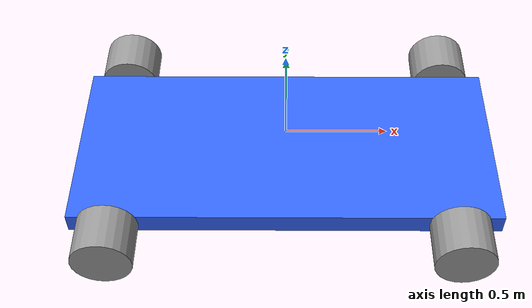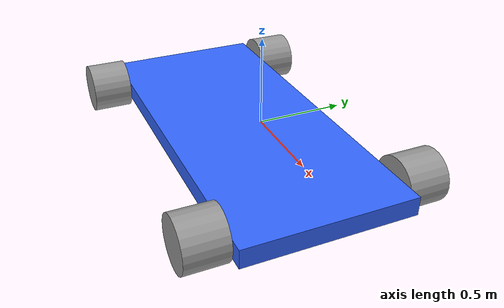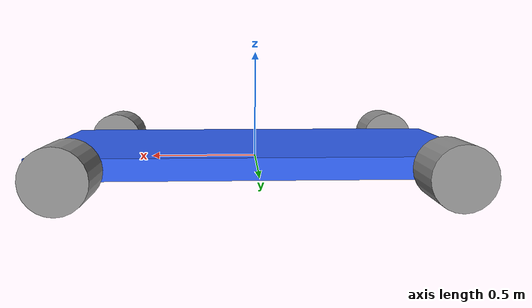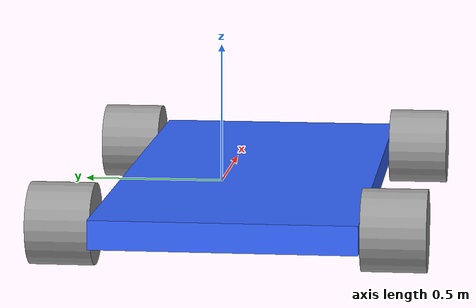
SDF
<?xml version='1.0'?>
<sdf version='1.6'>
  <model name='gokart'>
    <link name='link_0'>
      <pose frame=''>1e-06 -0.118472 -0 -0 -0 -0</pose>
      <inertial>
        <mass>1.59387</mass>
        <inertia>
          <ixx>0.470249</ixx>
          <ixy>0</ixy>
          <ixz>0</ixz>
          <iyy>0.265646</iyy>
          <iyz>0</iyz>
          <izz>0.470249</izz>
        </inertia>
        <pose frame=''>0 0 0 0 -0 0</pose>
      </inertial>
      <self_collide>0</self_collide>
      <kinematic>0</kinematic>
      <visual name='visual'>
        <pose frame=''>0 0 0 0 -0 0</pose>
        <geometry>
          <box>
            <size>2 0.9 0.1</size>
          </box>
        </geometry>
        <material>
          <lighting>1</lighting>
          <script>
            <uri>file://media/materials/scripts/gazebo.material</uri>
            <name>Gazebo/Grey</name>
          </script>
          <ambient>0.2 0.4 1 1</ambient>
          <diffuse>0.2 0.4 1 1</diffuse>
          <specular>0.01 0.01 0.01 1</specular>
          <emissive>0 0 0 1</emissive>
          <shader type='vertex'>
            <normal_map>__default__</normal_map>
          </shader>
        </material>
        <cast_shadows>1</cast_shadows>
        <transparency>0</transparency>
      </visual>
      <collision name='collision'>
        <laser_retro>0</laser_retro>
        <max_contacts>10</max_contacts>
        <pose frame=''>0 0 0 0 -0 0</pose>
        <geometry>
          <box>
            <size>2 0.9 0.1</size>
          </box>
        </geometry>
        <surface>
          <friction>
            <ode>
              <mu>1</mu>
              <mu2>1</mu2>
              <fdir1>0 0 0</fdir1>
              <slip1>0</slip1>
              <slip2>0</slip2>
            </ode>
            <torsional>
              <coefficient>1</coefficient>
              <patch_radius>0</patch_radius>
              <surface_radius>0</surface_radius>
              <use_patch_radius>1</use_patch_radius>
              <ode>
                <slip>0</slip>
              </ode>
            </torsional>
          </friction>
          <bounce>
            <restitution_coefficient>0</restitution_coefficient>
            <threshold>1e+06</threshold>
          </bounce>
          <contact>
            <collide_without_contact>0</collide_without_contact>
            <collide_without_contact_bitmask>1</collide_without_contact_bitmask>
            <collide_bitmask>1</collide_bitmask>
            <ode>
              <soft_cfm>0</soft_cfm>
              <soft_erp>0.2</soft_erp>
              <kp>1e+13</kp>
              <kd>1</kd>
              <max_vel>0.01</max_vel>
              <min_depth>0</min_depth>
            </ode>
            <bullet>
              <split_impulse>1</split_impulse>
              <split_impulse_penetration_threshold>-0.01</split_impulse_penetration_threshold>
              <soft_cfm>0</soft_cfm>
              <soft_erp>0.2</soft_erp>
              <kp>1e+13</kp>
              <kd>1</kd>
            </bullet>
          </contact>
        </surface>
      </collision>
    </link>
    <link name='link_1'>
      <pose frame=''>-0.81362 -0.678506 9e-06 1.5707 -0 0</pose>
      <inertial>
        <mass>1</mass>
        <inertia>
          <ixx>0.145833</ixx>
          <ixy>0</ixy>
          <ixz>0</ixz>
          <iyy>0.145833</iyy>
          <iyz>0</iyz>
          <izz>0.125</izz>
        </inertia>
        <pose frame=''>0 0 0 0 -0 0</pose>
      </inertial>
      <self_collide>0</self_collide>
      <kinematic>0</kinematic>
      <visual name='visual'>
        <pose frame=''>0 0 0 0 -0 0</pose>
        <geometry>
          <cylinder>
            <radius>0.14</radius>
            <length>0.22</length>
          </cylinder>
        </geometry>
        <material>
          <lighting>1</lighting>
          <script>
            <uri>file://media/materials/scripts/gazebo.material</uri>
            <name>Gazebo/Grey</name>
          </script>
          <ambient>0.1 0.1 0.1 1</ambient>
          <diffuse>0.1 0.1 0.1 1</diffuse>
          <specular>0.01 0.01 0.01 1</specular>
          <emissive>0 0 0 1</emissive>
          <shader type='vertex'>
            <normal_map>__default__</normal_map>
          </shader>
        </material>
        <cast_shadows>1</cast_shadows>
        <transparency>0</transparency>
      </visual>
      <collision name='collision'>
        <laser_retro>0</laser_retro>
        <max_contacts>10</max_contacts>
        <pose frame=''>0 0 0 0 -0 0</pose>
        <geometry>
          <cylinder>
            <radius>0.14</radius>
            <length>0.22</length>
          </cylinder>
        </geometry>
        <surface>
          <friction>
            <ode>
              <mu>1</mu>
              <mu2>1</mu2>
              <fdir1>0 0 0</fdir1>
              <slip1>0</slip1>
              <slip2>0</slip2>
            </ode>
            <torsional>
              <coefficient>1</coefficient>
              <patch_radius>0</patch_radius>
              <surface_radius>0</surface_radius>
              <use_patch_radius>1</use_patch_radius>
              <ode>
                <slip>0</slip>
              </ode>
            </torsional>
          </friction>
          <bounce>
            <restitution_coefficient>0</restitution_coefficient>
            <threshold>1e+06</threshold>
          </bounce>
          <contact>
            <collide_without_contact>0</collide_without_contact>
            <collide_without_contact_bitmask>1</collide_without_contact_bitmask>
            <collide_bitmask>1</collide_bitmask>
            <ode>
              <soft_cfm>0</soft_cfm>
              <soft_erp>0.2</soft_erp>
              <kp>1e+13</kp>
              <kd>1</kd>
              <max_vel>0.01</max_vel>
              <min_depth>0</min_depth>
            </ode>
            <bullet>
              <split_impulse>1</split_impulse>
              <split_impulse_penetration_threshold>-0.01</split_impulse_penetration_threshold>
              <soft_cfm>0</soft_cfm>
              <soft_erp>0.2</soft_erp>
              <kp>1e+13</kp>
              <kd>1</kd>
            </bullet>
          </contact>
        </surface>
      </collision>
    </link>
    <link name='link_1_clone'>
      <pose frame=''>-0.813633 0.441545 0 1.5707 -0 0</pose>
      <inertial>
        <mass>1</mass>
        <inertia>
          <ixx>0.145833</ixx>
          <ixy>0</ixy>
          <ixz>0</ixz>
          <iyy>0.145833</iyy>
          <iyz>0</iyz>
          <izz>0.125</izz>
        </inertia>
        <pose frame=''>0 0 0 0 -0 0</pose>
      </inertial>
      <self_collide>0</self_collide>
      <kinematic>0</kinematic>
      <visual name='visual'>
        <pose frame=''>0 0 0 0 -0 0</pose>
        <geometry>
          <cylinder>
            <radius>0.14</radius>
            <length>0.22</length>
          </cylinder>
        </geometry>
        <material>
          <lighting>1</lighting>
          <script>
            <uri>file://media/materials/scripts/gazebo.material</uri>
            <name>Gazebo/Grey</name>
          </script>
          <ambient>0.1 0.1 0.1 1</ambient>
          <diffuse>0.1 0.1 0.1 1</diffuse>
          <specular>0.01 0.01 0.01 1</specular>
          <emissive>0 0 0 1</emissive>
          <shader type='vertex'>
            <normal_map>__default__</normal_map>
          </shader>
        </material>
        <cast_shadows>1</cast_shadows>
        <transparency>0</transparency>
      </visual>
      <collision name='collision'>
        <laser_retro>0</laser_retro>
        <max_contacts>10</max_contacts>
        <pose frame=''>0 0 0 0 -0 0</pose>
        <geometry>
          <cylinder>
            <radius>0.14</radius>
            <length>0.22</length>
          </cylinder>
        </geometry>
        <surface>
          <friction>
            <ode>
              <mu>1</mu>
              <mu2>1</mu2>
              <fdir1>0 0 0</fdir1>
              <slip1>0</slip1>
              <slip2>0</slip2>
            </ode>
            <torsional>
              <coefficient>1</coefficient>
              <patch_radius>0</patch_radius>
              <surface_radius>0</surface_radius>
              <use_patch_radius>1</use_patch_radius>
              <ode>
                <slip>0</slip>
              </ode>
            </torsional>
          </friction>
          <bounce>
            <restitution_coefficient>0</restitution_coefficient>
            <threshold>1e+06</threshold>
          </bounce>
          <contact>
            <collide_without_contact>0</collide_without_contact>
            <collide_without_contact_bitmask>1</collide_without_contact_bitmask>
            <collide_bitmask>1</collide_bitmask>
            <ode>
              <soft_cfm>0</soft_cfm>
              <soft_erp>0.2</soft_erp>
              <kp>1e+13</kp>
              <kd>1</kd>
              <max_vel>0.01</max_vel>
              <min_depth>0</min_depth>
            </ode>
            <bullet>
              <split_impulse>1</split_impulse>
              <split_impulse_penetration_threshold>-0.01</split_impulse_penetration_threshold>
              <soft_cfm>0</soft_cfm>
              <soft_erp>0.2</soft_erp>
              <kp>1e+13</kp>
              <kd>1</kd>
            </bullet>
          </contact>
        </surface>
      </collision>
    </link>
    <link name='link_1_clone_0'>
      <pose frame=''>0.8 -0.678488 6e-06 1.5707 1.1e-05 1.1e-05</pose>
      <inertial>
        <mass>1</mass>
        <inertia>
          <ixx>0.145833</ixx>
          <ixy>0</ixy>
          <ixz>0</ixz>
          <iyy>0.145833</iyy>
          <iyz>0</iyz>
          <izz>0.125</izz>
        </inertia>
        <pose frame=''>0 0 0 0 -0 0</pose>
      </inertial>
      <self_collide>0</self_collide>
      <kinematic>0</kinematic>
      <visual name='visual'>
        <pose frame=''>0 0 0 0 -0 0</pose>
        <geometry>
          <cylinder>
            <radius>0.14</radius>
            <length>0.22</length>
          </cylinder>
        </geometry>
        <material>
          <lighting>1</lighting>
          <script>
            <uri>file://media/materials/scripts/gazebo.material</uri>
            <name>Gazebo/Grey</name>
          </script>
          <ambient>0.1 0.1 0.1 1</ambient>
          <diffuse>0.1 0.1 0.1 1</diffuse>
          <specular>0.01 0.01 0.01 1</specular>
          <emissive>0 0 0 1</emissive>
          <shader type='vertex'>
            <normal_map>__default__</normal_map>
          </shader>
        </material>
        <cast_shadows>1</cast_shadows>
        <transparency>0</transparency>
      </visual>
      <collision name='collision'>
        <laser_retro>0</laser_retro>
        <max_contacts>10</max_contacts>
        <pose frame=''>0 0 0 0 -0 0</pose>
        <geometry>
          <cylinder>
            <radius>0.14</radius>
            <length>0.22</length>
          </cylinder>
        </geometry>
        <surface>
          <friction>
            <ode>
              <mu>1</mu>
              <mu2>1</mu2>
              <fdir1>0 0 0</fdir1>
              <slip1>0</slip1>
              <slip2>0</slip2>
            </ode>
            <torsional>
              <coefficient>1</coefficient>
              <patch_radius>0</patch_radius>
              <surface_radius>0</surface_radius>
              <use_patch_radius>1</use_patch_radius>
              <ode>
                <slip>0</slip>
              </ode>
            </torsional>
          </friction>
          <bounce>
            <restitution_coefficient>0</restitution_coefficient>
            <threshold>1e+06</threshold>
          </bounce>
          <contact>
            <collide_without_contact>0</collide_without_contact>
            <collide_without_contact_bitmask>1</collide_without_contact_bitmask>
            <collide_bitmask>1</collide_bitmask>
            <ode>
              <soft_cfm>0</soft_cfm>
              <soft_erp>0.2</soft_erp>
              <kp>1e+13</kp>
              <kd>1</kd>
              <max_vel>0.01</max_vel>
              <min_depth>0</min_depth>
            </ode>
            <bullet>
              <split_impulse>1</split_impulse>
              <split_impulse_penetration_threshold>-0.01</split_impulse_penetration_threshold>
              <soft_cfm>0</soft_cfm>
              <soft_erp>0.2</soft_erp>
              <kp>1e+13</kp>
              <kd>1</kd>
            </bullet>
          </contact>
        </surface>
      </collision>
    </link>
    <link name='link_1_clone_1'>
      <pose frame=''>0.800005 0.441562 -2e-06 1.5707 1.1e-05 1.1e-05</pose>
      <inertial>
        <mass>1</mass>
        <inertia>
          <ixx>0.145833</ixx>
          <ixy>0</ixy>
          <ixz>0</ixz>
          <iyy>0.145833</iyy>
          <iyz>0</iyz>
          <izz>0.125</izz>
        </inertia>
        <pose frame=''>0 0 0 0 -0 0</pose>
      </inertial>
      <self_collide>0</self_collide>
      <kinematic>0</kinematic>
      <visual name='visual'>
        <pose frame=''>0 0 0 0 -0 0</pose>
        <geometry>
          <cylinder>
            <radius>0.14</radius>
            <length>0.22</length>
          </cylinder>
        </geometry>
        <material>
          <lighting>1</lighting>
          <script>
            <uri>file://media/materials/scripts/gazebo.material</uri>
            <name>Gazebo/Grey</name>
          </script>
          <ambient>0.1 0.1 0.1 1</ambient>
          <diffuse>0.1 0.1 0.1 1</diffuse>
          <specular>0.01 0.01 0.01 1</specular>
          <emissive>0 0 0 1</emissive>
          <shader type='vertex'>
            <normal_map>__default__</normal_map>
          </shader>
        </material>
        <cast_shadows>1</cast_shadows>
        <transparency>0</transparency>
      </visual>
      <collision name='collision'>
        <laser_retro>0</laser_retro>
        <max_contacts>10</max_contacts>
        <pose frame=''>0 0 0 0 -0 0</pose>
        <geometry>
          <cylinder>
            <radius>0.14</radius>
            <length>0.22</length>
          </cylinder>
        </geometry>
        <surface>
          <friction>
            <ode>
              <mu>1</mu>
              <mu2>1</mu2>
              <fdir1>0 0 0</fdir1>
              <slip1>0</slip1>
              <slip2>0</slip2>
            </ode>
            <torsional>
              <coefficient>1</coefficient>
              <patch_radius>0</patch_radius>
              <surface_radius>0</surface_radius>
              <use_patch_radius>1</use_patch_radius>
              <ode>
                <slip>0</slip>
              </ode>
            </torsional>
          </friction>
          <bounce>
            <restitution_coefficient>0</restitution_coefficient>
            <threshold>1e+06</threshold>
          </bounce>
          <contact>
            <collide_without_contact>0</collide_without_contact>
            <collide_without_contact_bitmask>1</collide_without_contact_bitmask>
            <collide_bitmask>1</collide_bitmask>
            <ode>
              <soft_cfm>0</soft_cfm>
              <soft_erp>0.2</soft_erp>
              <kp>1e+13</kp>
              <kd>1</kd>
              <max_vel>0.01</max_vel>
              <min_depth>0</min_depth>
            </ode>
            <bullet>
              <split_impulse>1</split_impulse>
              <split_impulse_penetration_threshold>-0.01</split_impulse_penetration_threshold>
              <soft_cfm>0</soft_cfm>
              <soft_erp>0.2</soft_erp>
              <kp>1e+13</kp>
              <kd>1</kd>
            </bullet>
          </contact>
        </surface>
      </collision>
    </link>
    <joint name='link_0_JOINT_0_0' type='revolute'>
      <parent>link_0</parent>
      <child>link_1_clone_0</child>
      <pose frame=''>0 0 0 0 -0 0</pose>
      <axis>
        <xyz>0 0 1</xyz>
        <use_parent_model_frame>0</use_parent_model_frame>
        <limit>
          <lower>-1.79769e+308</lower>
          <upper>1.79769e+308</upper>
          <effort>-1</effort>
          <velocity>-1</velocity>
        </limit>
        <dynamics>
          <spring_reference>0</spring_reference>
          <spring_stiffness>0</spring_stiffness>
          <damping>0</damping>
          <friction>0</friction>
        </dynamics>
      </axis>
      <physics>
        <ode>
          <limit>
            <cfm>0</cfm>
            <erp>0.2</erp>
          </limit>
          <suspension>
            <cfm>0</cfm>
            <erp>0.2</erp>
          </suspension>
        </ode>
      </physics>
    </joint>
    <joint name='link_0_JOINT_0' type='revolute'>
      <parent>link_0</parent>
      <child>link_1</child>
      <pose frame=''>0 0 0 0 -0 0</pose>
      <axis>
        <xyz>0 0 1</xyz>
        <use_parent_model_frame>0</use_parent_model_frame>
        <limit>
          <lower>-1.79769e+308</lower>
          <upper>1.79769e+308</upper>
          <effort>-1</effort>
          <velocity>-1</velocity>
        </limit>
        <dynamics>
          <spring_reference>0</spring_reference>
          <spring_stiffness>0</spring_stiffness>
          <damping>0</damping>
          <friction>0</friction>
        </dynamics>
      </axis>
      <physics>
        <ode>
          <limit>
            <cfm>0</cfm>
            <erp>0.2</erp>
          </limit>
          <suspension>
            <cfm>0</cfm>
            <erp>0.2</erp>
          </suspension>
        </ode>
      </physics>
    </joint>
    <joint name='link_0_JOINT_1_0' type='revolute'>
      <parent>link_0</parent>
      <child>link_1_clone_1</child>
      <pose frame=''>0 0 0 0 -0 0</pose>
      <axis>
        <xyz>1 0 0</xyz>
        <use_parent_model_frame>0</use_parent_model_frame>
        <limit>
          <lower>-1.79769e+308</lower>
          <upper>1.79769e+308</upper>
          <effort>-1</effort>
          <velocity>-1</velocity>
        </limit>
        <dynamics>
          <spring_reference>0</spring_reference>
          <spring_stiffness>0</spring_stiffness>
          <damping>0</damping>
          <friction>0</friction>
        </dynamics>
      </axis>
      <physics>
        <ode>
          <limit>
            <cfm>0</cfm>
            <erp>0.2</erp>
          </limit>
          <suspension>
            <cfm>0</cfm>
            <erp>0.2</erp>
          </suspension>
        </ode>
      </physics>
    </joint>
    <joint name='link_0_JOINT_1' type='revolute'>
      <parent>link_0</parent>
      <child>link_1_clone</child>
      <pose frame=''>-0 0 0 0 -0 0</pose>
      <axis>
        <xyz>0 0 1</xyz>
        <use_parent_model_frame>0</use_parent_model_frame>
        <limit>
          <lower>-1.79769e+308</lower>
          <upper>1.79769e+308</upper>
          <effort>-1</effort>
          <velocity>-1</velocity>
        </limit>
        <dynamics>
          <spring_reference>0</spring_reference>
          <spring_stiffness>0</spring_stiffness>
          <damping>0</damping>
          <friction>0</friction>
        </dynamics>
      </axis>
      <physics>
        <ode>
          <limit>
            <cfm>0</cfm>
            <erp>0.2</erp>
          </limit>
          <suspension>
            <cfm>0</cfm>
            <erp>0.2</erp>
          </suspension>
        </ode>
      </physics>
    </joint>
    <static>0</static>
    <allow_auto_disable>1</allow_auto_disable>
  </model>
</sdf>
